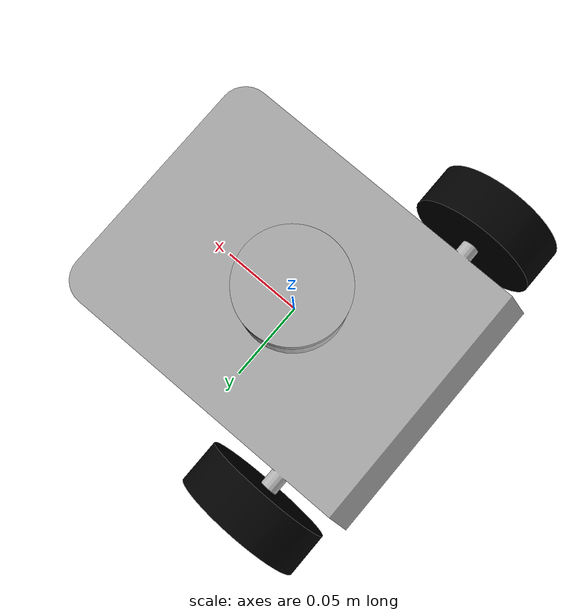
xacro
<?xml version="1.0" ?>
<robot name="rmp_bot" xmlns:xacro="http://www.ros.org/wiki/xacro">

<xacro:include filename="$(find rmp_bot_description)/urdf/materials.xacro" />
<xacro:include filename="$(find rmp_bot_description)/urdf/rmp_bot.trans" />
<xacro:include filename="$(find rmp_bot_description)/urdf/rmp_bot.gazebo" />
<link name="base_link">
  <inertial>
    <origin xyz="0.0008710957597731085 2.209711664581471e-17 0.04022216748709455" rpy="0 0 0"/>
    <mass value="0.872570298950657"/>
    <inertia ixx="0.001596" iyy="0.002654" izz="0.004032" ixy="0.0" iyz="0.0" ixz="-7e-06"/>
  </inertial>
  <visual>
    <origin xyz="0 0 0" rpy="0 0 0"/>
    <geometry>
      <mesh filename="package://rmp_bot_description/meshes/base_link.stl" scale="0.001 0.001 0.001"/>
    </geometry>
    <material name="silver"/>
  </visual>
  <collision>
    <origin xyz="0 0 0" rpy="0 0 0"/>
    <geometry>
      <mesh filename="package://rmp_bot_description/meshes/base_link.stl" scale="0.001 0.001 0.001"/>
    </geometry>
  </collision>
</link>

<link name="right_wheel_1">
  <inertial>
    <origin xyz="-9.457712391025552e-15 -0.012500000000000011 1.3877787807814457e-17" rpy="0 0 0"/>
    <mass value="0.10088930282692339"/>
    <inertia ixx="4.1e-05" iyy="7.2e-05" izz="4.1e-05" ixy="0.0" iyz="-0.0" ixz="-0.0"/>
  </inertial>
  <visual>
    <origin xyz="0.055 0.085 -0.0375" rpy="0 0 0"/>
    <geometry>
      <mesh filename="package://rmp_bot_description/meshes/right_wheel_1.stl" scale="0.001 0.001 0.001"/>
    </geometry>
    <material name="black"/>
  </visual>
  <collision>
    <origin xyz="0.055 0.085 -0.0375" rpy="0 0 0"/>
    <geometry>
      <mesh filename="package://rmp_bot_description/meshes/right_wheel_1.stl" scale="0.001 0.001 0.001"/>
    </geometry>
  </collision>
</link>

<link name="left_wheel_1">
  <inertial>
    <origin xyz="-9.46465128492946e-15 0.012499999999999997 6.938893903907228e-18" rpy="0 0 0"/>
    <mass value="0.10088930282692339"/>
    <inertia ixx="4.1e-05" iyy="7.2e-05" izz="4.1e-05" ixy="-0.0" iyz="0.0" ixz="0.0"/>
  </inertial>
  <visual>
    <origin xyz="0.055 -0.085 -0.0375" rpy="0 0 0"/>
    <geometry>
      <mesh filename="package://rmp_bot_description/meshes/left_wheel_1.stl" scale="0.001 0.001 0.001"/>
    </geometry>
    <material name="black"/>
  </visual>
  <collision>
    <origin xyz="0.055 -0.085 -0.0375" rpy="0 0 0"/>
    <geometry>
      <mesh filename="package://rmp_bot_description/meshes/left_wheel_1.stl" scale="0.001 0.001 0.001"/>
    </geometry>
  </collision>
</link>

<link name="caster_1">
  <inertial>
    <origin xyz="-0.030000000000000027 -4.440892098500626e-18 -0.009553571428571434" rpy="0 0 0"/>
    <mass value="0.21848549721086696"/>
    <inertia ixx="3.1e-05" iyy="3.1e-05" izz="4.6e-05" ixy="-0.0" iyz="0.0" ixz="-0.0"/>
  </inertial>
  <visual>
    <origin xyz="-0.1 -0.0 -0.025" rpy="0 0 0"/>
    <geometry>
      <mesh filename="package://rmp_bot_description/meshes/caster_1.stl" scale="0.001 0.001 0.001"/>
    </geometry>
    <material name="silver"/>
  </visual>
  <collision>
    <origin xyz="-0.1 -0.0 -0.025" rpy="0 0 0"/>
    <geometry>
      <mesh filename="package://rmp_bot_description/meshes/caster_1.stl" scale="0.001 0.001 0.001"/>
    </geometry>
  </collision>
</link>

<link name="lidar_1">
  <inertial>
    <origin xyz="2.220446049250313e-18 -1.3877787807814457e-19 0.0050000000000000044" rpy="0 0 0"/>
    <mass value="0.22195352097611892"/>
    <inertia ixx="5.2e-05" iyy="5.2e-05" izz="0.0001" ixy="0.0" iyz="-0.0" ixz="0.0"/>
  </inertial>
  <visual>
    <origin xyz="-0.0 -0.0 -0.08" rpy="0 0 0"/>
    <geometry>
      <mesh filename="package://rmp_bot_description/meshes/lidar_1.stl" scale="0.001 0.001 0.001"/>
    </geometry>
    <material name="silver"/>
  </visual>
  <collision>
    <origin xyz="-0.0 -0.0 -0.08" rpy="0 0 0"/>
    <geometry>
      <mesh filename="package://rmp_bot_description/meshes/lidar_1.stl" scale="0.001 0.001 0.001"/>
    </geometry>
  </collision>
</link>

<!-- Camera link -->
<link name="camera_link" />

<!-- Camera joint -->
<joint name="camera_joint" type="fixed">
<origin xyz="0.0 0.0 0.1" rpy="0 0 0"/>
  <parent link="base_link"/>
  <child link="camera_link"/>
</joint>

<joint name="right_wheel_joint" type="continuous">
  <origin xyz="-0.055 -0.085 0.0375" rpy="0 0 0"/>
  <parent link="base_link"/>
  <child link="right_wheel_1"/>
  <axis xyz="0.0 1.0 0.0"/>
</joint>

<joint name="left_wheel_joint" type="continuous">
  <origin xyz="-0.055 0.085 0.0375" rpy="0 0 0"/>
  <parent link="base_link"/>
  <child link="left_wheel_1"/>
  <axis xyz="0.0 1.0 0.0"/>
</joint>

<joint name="caster_joint" type="fixed">
  <origin xyz="0.1 0.0 0.025" rpy="0 0 0"/>
  <parent link="base_link"/>
  <child link="caster_1"/>
</joint>

<joint name="lidar_joint" type="fixed">
  <origin xyz="0.0 0.0 0.08" rpy="0 0 0"/>
  <parent link="base_link"/>
  <child link="lidar_1"/>
</joint>

</robot>

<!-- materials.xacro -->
<robot name="rmp_bot" xmlns:xacro="http://www.ros.org/wiki/xacro" >

<material name="silver">
  <color rgba="0.700 0.700 0.700 1.000"/>
</material>
<material name="black">
  <color rgba="0.0 0.0 0.0 1.000"/>
</material>

</robot>

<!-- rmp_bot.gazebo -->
<robot name="rmp_bot" xmlns:xacro="http://www.ros.org/wiki/xacro" >

<xacro:property name="body_color" value="Gazebo/Silver" />
<xacro:property name="wheel_color" value="Gazebo/FlatBlack" />

<gazebo>
  <plugin name="control" filename="libgazebo_ros_control.so"/>
</gazebo>
<gazebo reference="base_link">
  <material>${body_color}</material>
  <mu1>0.2</mu1>
  <mu2>0.2</mu2>
  <selfCollide>true</selfCollide>
  <gravity>true</gravity>
</gazebo>

<gazebo reference="right_wheel_1">
  <material>${wheel_color}</material>
  <mu1>10</mu1>
  <mu2>10</mu2>
  <selfCollide>true</selfCollide>
</gazebo>

<gazebo reference="left_wheel_1">
  <material>${wheel_color}</material>
  <mu1>10</mu1>
  <mu2>10</mu2>
  <selfCollide>true</selfCollide>
</gazebo>

<gazebo reference="caster_1">
  <material>${body_color}</material>
  <mu1>0.2</mu1>
  <mu2>0.2</mu2>
  <selfCollide>true</selfCollide>
</gazebo>

<gazebo reference="lidar_1">
  <material>${body_color}</material>
  <mu1>0.2</mu1>
  <mu2>0.2</mu2>
  <selfCollide>true</selfCollide>
</gazebo>

<!-- Differential drive  -->

<gazebo>
  <plugin name="differential_drive_controller" filename="libgazebo_ros_diff_drive.so">

    <!-- Plugin update rate in Hz -->
    <updateRate>10</updateRate>

    <!-- Name of left joint, defaults to `left_joint` -->
    <leftJoint>left_wheel_joint</leftJoint>

    <!-- Name of right joint, defaults to `right_joint` -->
    <rightJoint>right_wheel_joint</rightJoint>

    <!-- The distance from the center of one wheel to the other, in meters, defaults to 0.34 m -->
    <wheelSeparation>0.19</wheelSeparation>

    <!-- Diameter of the wheels, in meters, defaults to 0.15 m -->
    <wheelDiameter>0.075</wheelDiameter>

    <!-- Wheel acceleration, in rad/s^2, defaults to 0.0 rad/s^2 -->
    <wheelAcceleration>1.0</wheelAcceleration>

    <!-- Maximum torque which the wheels can produce, in Nm, defaults to 5 Nm -->
    <wheelTorque>20</wheelTorque>

    <!-- Topic to receive geometry_msgs/Twist message commands, defaults to `cmd_vel` -->
    <commandTopic>cmd_vel</commandTopic>

    <!-- Topic to publish nav_msgs/Odometry messages, defaults to `odom` -->
    <odometryTopic>odom</odometryTopic>

    <!-- Odometry frame, defaults to `odom` -->
    <odometryFrame>odom</odometryFrame>

    <!-- Robot frame to calculate odometry from, defaults to `base_footprint` -->
    <robotBaseFrame>base_link</robotBaseFrame>

    <!-- Odometry source, 0 for ENCODER, 1 for WORLD, defaults to WORLD -->
    <odometrySource>1</odometrySource>

    <!-- Set to true to publish transforms for the wheel links, defaults to false -->
    <publishWheelTF>true</publishWheelTF>

    <!-- Set to true to publish transforms for the odometry, defaults to true -->
    <publishOdom>true</publishOdom>

    <!-- Set to true to publish sensor_msgs/JointState on /joint_states for the wheel joints, defaults to false -->
    <publishWheelJointState>true</publishWheelJointState>

    <!-- Set to true to swap right and left wheels, defaults to true -->
    <legacyMode>false</legacyMode>
  </plugin>
</gazebo>

<!-- Laser plugin -->

<gazebo reference="lidar_1">
    <sensor type="ray" name="head_hokuyo_sensor">
      <pose>0 0 0 0 0 0</pose>
      <visualize>false</visualize>
      <update_rate>40</update_rate>
      <ray>
        <scan>
          <horizontal>
            <samples>720</samples>
            <resolution>1</resolution>
            <min_angle>-1.570796</min_angle>
            <max_angle>1.570796</max_angle>
          </horizontal>
        </scan>
        <range>
          <min>0.10</min>
          <max>30.0</max>
          <resolution>0.01</resolution>
        </range>
        <noise>
          <type>gaussian</type>
          <mean>0.0</mean>
          <stddev>0.01</stddev>
        </noise>
      </ray>
      <plugin name="gazebo_ros_head_hokuyo_controller" filename="libgazebo_ros_laser.so">
        <topicName>/scan</topicName>
        <frameName>lidar_1</frameName>
      </plugin>
    </sensor>
  </gazebo>

<!-- Camera plugin -->
<!-- camera -->
  <gazebo reference="camera_link">
    <sensor type="camera" name="camera1">
      <update_rate>30.0</update_rate>
      <camera name="head">
        <horizontal_fov>1.3962634</horizontal_fov>
        <image>
          <width>800</width>
          <height>800</height>
          <format>R8G8B8</format>
        </image>
        <clip>
          <near>0.02</near>
          <far>300</far>
        </clip>
        <noise>
          <type>gaussian</type>
          <!-- Noise is sampled independently per pixel on each frame.
               That pixel's noise value is added to each of its color
               channels, which at that point lie in the range [0,1]. -->
          <mean>0.0</mean>
          <stddev>0.007</stddev>
        </noise>
      </camera>
      <plugin name="camera_controller" filename="libgazebo_ros_camera.so">
        <alwaysOn>true</alwaysOn>
        <updateRate>0.0</updateRate>
        <cameraName>rrbot/camera1</cameraName>
        <imageTopicName>image_raw</imageTopicName>
        <cameraInfoTopicName>camera_info</cameraInfoTopicName>
        <frameName>camera_link</frameName>
        <hackBaseline>0.07</hackBaseline>
        <distortionK1>0.0</distortionK1>
        <distortionK2>0.0</distortionK2>
        <distortionK3>0.0</distortionK3>
        <distortionT1>0.0</distortionT1>
        <distortionT2>0.0</distortionT2>
      </plugin>
    </sensor>
  </gazebo>

</robot>
